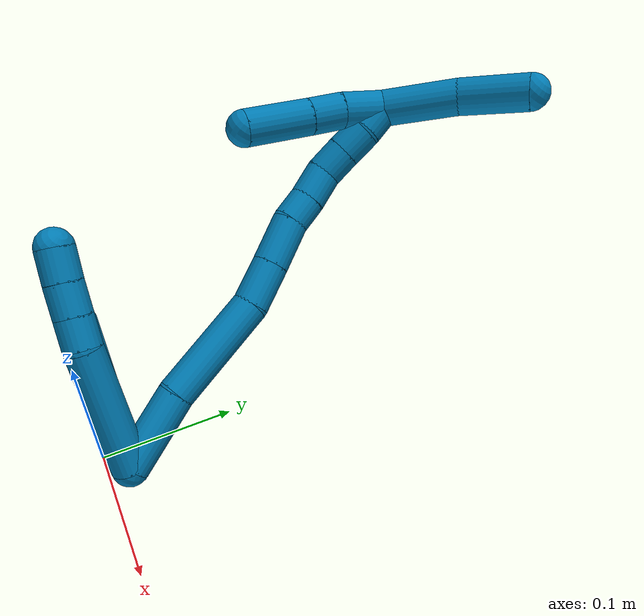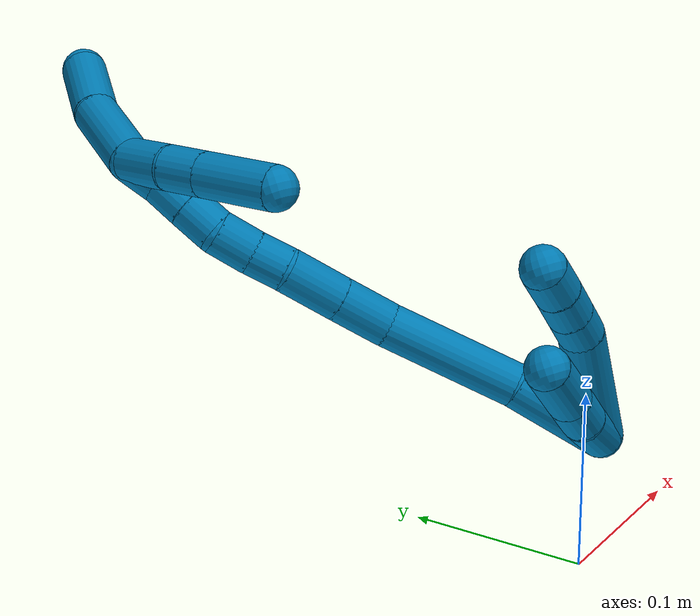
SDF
<sdf version="1.7">
 <world name="default">
  <model name="9">
   <static>0</static>
   <link name="9">
    <collision name="collision-cylinder-e_1_2_8">
     <pose>-0.033994 -0.007023 0.026018 0.263658 -0.900494 -0.12801</pose>
     <geometry><cylinder><radius>0.0125</radius><length>0.086761</length></cylinder></geometry>
     <surface>
      <friction><ode><mu>1.16</mu><mu2>1.16</mu2><slip1>0</slip1><slip2>0</slip2></ode></friction>
      <contact><ode><kp>1e+06</kp><kd>1</kd><max_vel>0</max_vel><min_depth>0.001</min_depth></ode></contact>
     </surface>
    </collision>
    <visual name="visual-cylinder-e_1_2_8">
     <pose>-0.033994 -0.007023 0.026018 0.263658 -0.900494 -0.12801</pose>
     <geometry><cylinder><radius>0.0125</radius><length>0.086761</length></cylinder></geometry>
     <material><ambient>0 0.490196 0.709804 1</ambient></material>
    </visual>
    <collision name="collision-cylinder-e_2_8_9">
     <pose>-0.07681 -0.013766 0.057241 -0.053764 -1.037 0.030681</pose>
     <geometry><cylinder><radius>0.0125</radius><length>0.020494</length></cylinder></geometry>
     <surface>
      <friction><ode><mu>1.16</mu><mu2>1.16</mu2><slip1>0</slip1><slip2>0</slip2></ode></friction>
      <contact><ode><kp>1e+06</kp><kd>1</kd><max_vel>0</max_vel><min_depth>0.001</min_depth></ode></contact>
     </surface>
    </collision>
    <visual name="visual-cylinder-e_2_8_9">
     <pose>-0.07681 -0.013766 0.057241 -0.053764 -1.037 0.030681</pose>
     <geometry><cylinder><radius>0.0125</radius><length>0.020494</length></cylinder></geometry>
     <material><ambient>0 0.490196 0.709804 1</ambient></material>
    </visual>
    <collision name="collision-cylinder-e_3_9_10">
     <pose>-0.094801 -0.013178 0.067872 -0.056709 -1.03587 0.03232</pose>
     <geometry><cylinder><radius>0.0125</radius><length>0.021316</length></cylinder></geometry>
     <surface>
      <friction><ode><mu>1.16</mu><mu2>1.16</mu2><slip1>0</slip1><slip2>0</slip2></ode></friction>
      <contact><ode><kp>1e+06</kp><kd>1</kd><max_vel>0</max_vel><min_depth>0.001</min_depth></ode></contact>
     </surface>
    </collision>
    <visual name="visual-cylinder-e_3_9_10">
     <pose>-0.094801 -0.013178 0.067872 -0.056709 -1.03587 0.03232</pose>
     <geometry><cylinder><radius>0.0125</radius><length>0.021316</length></cylinder></geometry>
     <material><ambient>0 0.490196 0.709804 1</ambient></material>
    </visual>
    <collision name="collision-cylinder-e_4_10_6">
     <pose>-0.11303 -0.012244 0.078982 -0.109693 -1.00766 0.060515</pose>
     <geometry><cylinder><radius>0.0125</radius><length>0.021429</length></cylinder></geometry>
     <surface>
      <friction><ode><mu>1.16</mu><mu2>1.16</mu2><slip1>0</slip1><slip2>0</slip2></ode></friction>
      <contact><ode><kp>1e+06</kp><kd>1</kd><max_vel>0</max_vel><min_depth>0.001</min_depth></ode></contact>
     </surface>
    </collision>
    <visual name="visual-cylinder-e_4_10_6">
     <pose>-0.11303 -0.012244 0.078982 -0.109693 -1.00766 0.060515</pose>
     <geometry><cylinder><radius>0.0125</radius><length>0.021429</length></cylinder></geometry>
     <material><ambient>0 0.490196 0.709804 1</ambient></material>
    </visual>
    <collision name="collision-cylinder-e_1_2_11">
     <pose>-0.017493 0.001388 0.005146 -0.263423 -1.27504 0.195626</pose>
     <geometry><cylinder><radius>0.0125</radius><length>0.036575</length></cylinder></geometry>
     <surface>
      <friction><ode><mu>1.16</mu><mu2>1.16</mu2><slip1>0</slip1><slip2>0</slip2></ode></friction>
      <contact><ode><kp>1e+06</kp><kd>1</kd><max_vel>0</max_vel><min_depth>0.001</min_depth></ode></contact>
     </surface>
    </collision>
    <visual name="visual-cylinder-e_1_2_11">
     <pose>-0.017493 0.001388 0.005146 -0.263423 -1.27504 0.195626</pose>
     <geometry><cylinder><radius>0.0125</radius><length>0.036575</length></cylinder></geometry>
     <material><ambient>0 0.490196 0.709804 1</ambient></material>
    </visual>
    <collision name="collision-cylinder-e_2_11_12">
     <pose>-0.046151 0.003393 0.015788 -0.11181 -1.11089 0.069436</pose>
     <geometry><cylinder><radius>0.0125</radius><length>0.024917</length></cylinder></geometry>
     <surface>
      <friction><ode><mu>1.16</mu><mu2>1.16</mu2><slip1>0</slip1><slip2>0</slip2></ode></friction>
      <contact><ode><kp>1e+06</kp><kd>1</kd><max_vel>0</max_vel><min_depth>0.001</min_depth></ode></contact>
     </surface>
    </collision>
    <visual name="visual-cylinder-e_2_11_12">
     <pose>-0.046151 0.003393 0.015788 -0.11181 -1.11089 0.069436</pose>
     <geometry><cylinder><radius>0.0125</radius><length>0.024917</length></cylinder></geometry>
     <material><ambient>0 0.490196 0.709804 1</ambient></material>
    </visual>
    <collision name="collision-cylinder-e_3_12_5">
     <pose>-0.074562 0.004895 0.029796 -0.103559 -1.11016 0.064254</pose>
     <geometry><cylinder><radius>0.0125</radius><length>0.038508</length></cylinder></geometry>
     <surface>
      <friction><ode><mu>1.16</mu><mu2>1.16</mu2><slip1>0</slip1><slip2>0</slip2></ode></friction>
      <contact><ode><kp>1e+06</kp><kd>1</kd><max_vel>0</max_vel><min_depth>0.001</min_depth></ode></contact>
     </surface>
    </collision>
    <visual name="visual-cylinder-e_3_12_5">
     <pose>-0.074562 0.004895 0.029796 -0.103559 -1.11016 0.064254</pose>
     <geometry><cylinder><radius>0.0125</radius><length>0.038508</length></cylinder></geometry>
     <material><ambient>0 0.490196 0.709804 1</ambient></material>
    </visual>
    <collision name="collision-cylinder-e_1_2_13">
     <pose>-0.009453 0.016778 0.019886 -0.700825 -0.348506 0.128506</pose>
     <geometry><cylinder><radius>0.0125</radius><length>0.055365</length></cylinder></geometry>
     <surface>
      <friction><ode><mu>1.16</mu><mu2>1.16</mu2><slip1>0</slip1><slip2>0</slip2></ode></friction>
      <contact><ode><kp>1e+06</kp><kd>1</kd><max_vel>0</max_vel><min_depth>0.001</min_depth></ode></contact>
     </surface>
    </collision>
    <visual name="visual-cylinder-e_1_2_13">
     <pose>-0.009453 0.016778 0.019886 -0.700825 -0.348506 0.128506</pose>
     <geometry><cylinder><radius>0.0125</radius><length>0.055365</length></cylinder></geometry>
     <material><ambient>0 0.490196 0.709804 1</ambient></material>
    </visual>
    <collision name="collision-cylinder-e_2_13_14">
     <pose>-0.027364 0.060506 0.06587 -0.801467 -0.221721 0.094251</pose>
     <geometry><cylinder><radius>0.0125</radius><length>0.076913</length></cylinder></geometry>
     <surface>
      <friction><ode><mu>1.16</mu><mu2>1.16</mu2><slip1>0</slip1><slip2>0</slip2></ode></friction>
      <contact><ode><kp>1e+06</kp><kd>1</kd><max_vel>0</max_vel><min_depth>0.001</min_depth></ode></contact>
     </surface>
    </collision>
    <visual name="visual-cylinder-e_2_13_14">
     <pose>-0.027364 0.060506 0.06587 -0.801467 -0.221721 0.094251</pose>
     <geometry><cylinder><radius>0.0125</radius><length>0.076913</length></cylinder></geometry>
     <material><ambient>0 0.490196 0.709804 1</ambient></material>
    </visual>
    <collision name="collision-cylinder-e_3_14_15">
     <pose>-0.042633 0.096839 0.102434 -0.73089 -0.45128 0.175216</pose>
     <geometry><cylinder><radius>0.0125</radius><length>0.031241</length></cylinder></geometry>
     <surface>
      <friction><ode><mu>1.16</mu><mu2>1.16</mu2><slip1>0</slip1><slip2>0</slip2></ode></friction>
      <contact><ode><kp>1e+06</kp><kd>1</kd><max_vel>0</max_vel><min_depth>0.001</min_depth></ode></contact>
     </surface>
    </collision>
    <visual name="visual-cylinder-e_3_14_15">
     <pose>-0.042633 0.096839 0.102434 -0.73089 -0.45128 0.175216</pose>
     <geometry><cylinder><radius>0.0125</radius><length>0.031241</length></cylinder></geometry>
     <material><ambient>0 0.490196 0.709804 1</ambient></material>
    </visual>
    <collision name="collision-cylinder-e_4_15_16">
     <pose>-0.056985 0.116016 0.124099 -0.718543 -0.469055 0.178987</pose>
     <geometry><cylinder><radius>0.0125</radius><length>0.033358</length></cylinder></geometry>
     <surface>
      <friction><ode><mu>1.16</mu><mu2>1.16</mu2><slip1>0</slip1><slip2>0</slip2></ode></friction>
      <contact><ode><kp>1e+06</kp><kd>1</kd><max_vel>0</max_vel><min_depth>0.001</min_depth></ode></contact>
     </surface>
    </collision>
    <visual name="visual-cylinder-e_4_15_16">
     <pose>-0.056985 0.116016 0.124099 -0.718543 -0.469055 0.178987</pose>
     <geometry><cylinder><radius>0.0125</radius><length>0.033358</length></cylinder></geometry>
     <material><ambient>0 0.490196 0.709804 1</ambient></material>
    </visual>
    <collision name="collision-cylinder-e_5_16_17">
     <pose>-0.067151 0.132581 0.142193 -0.776353 -0.26538 0.109054</pose>
     <geometry><cylinder><radius>0.0125</radius><length>0.020028</length></cylinder></geometry>
     <surface>
      <friction><ode><mu>1.16</mu><mu2>1.16</mu2><slip1>0</slip1><slip2>0</slip2></ode></friction>
      <contact><ode><kp>1e+06</kp><kd>1</kd><max_vel>0</max_vel><min_depth>0.001</min_depth></ode></contact>
     </surface>
    </collision>
    <visual name="visual-cylinder-e_5_16_17">
     <pose>-0.067151 0.132581 0.142193 -0.776353 -0.26538 0.109054</pose>
     <geometry><cylinder><radius>0.0125</radius><length>0.020028</length></cylinder></geometry>
     <material><ambient>0 0.490196 0.709804 1</ambient></material>
    </visual>
    <collision name="collision-cylinder-e_6_17_18">
     <pose>-0.07368 0.146242 0.157152 -0.707038 -0.352543 0.131271</pose>
     <geometry><cylinder><radius>0.0125</radius><length>0.022603</length></cylinder></geometry>
     <surface>
      <friction><ode><mu>1.16</mu><mu2>1.16</mu2><slip1>0</slip1><slip2>0</slip2></ode></friction>
      <contact><ode><kp>1e+06</kp><kd>1</kd><max_vel>0</max_vel><min_depth>0.001</min_depth></ode></contact>
     </surface>
    </collision>
    <visual name="visual-cylinder-e_6_17_18">
     <pose>-0.07368 0.146242 0.157152 -0.707038 -0.352543 0.131271</pose>
     <geometry><cylinder><radius>0.0125</radius><length>0.022603</length></cylinder></geometry>
     <material><ambient>0 0.490196 0.709804 1</ambient></material>
    </visual>
    <collision name="collision-cylinder-e_7_18_19">
     <pose>-0.078604 0.158247 0.173954 -0.529652 -0.100635 0.027313</pose>
     <geometry><cylinder><radius>0.0125</radius><length>0.020355</length></cylinder></geometry>
     <surface>
      <friction><ode><mu>1.16</mu><mu2>1.16</mu2><slip1>0</slip1><slip2>0</slip2></ode></friction>
      <contact><ode><kp>1e+06</kp><kd>1</kd><max_vel>0</max_vel><min_depth>0.001</min_depth></ode></contact>
     </surface>
    </collision>
    <visual name="visual-cylinder-e_7_18_19">
     <pose>-0.078604 0.158247 0.173954 -0.529652 -0.100635 0.027313</pose>
     <geometry><cylinder><radius>0.0125</radius><length>0.020355</length></cylinder></geometry>
     <material><ambient>0 0.490196 0.709804 1</ambient></material>
    </visual>
    <collision name="collision-cylinder-e_8_19_20">
     <pose>-0.080322 0.168305 0.191412 -0.515625 -0.069256 0.018268</pose>
     <geometry><cylinder><radius>0.0125</radius><length>0.020092</length></cylinder></geometry>
     <surface>
      <friction><ode><mu>1.16</mu><mu2>1.16</mu2><slip1>0</slip1><slip2>0</slip2></ode></friction>
      <contact><ode><kp>1e+06</kp><kd>1</kd><max_vel>0</max_vel><min_depth>0.001</min_depth></ode></contact>
     </surface>
    </collision>
    <visual name="visual-cylinder-e_8_19_20">
     <pose>-0.080322 0.168305 0.191412 -0.515625 -0.069256 0.018268</pose>
     <geometry><cylinder><radius>0.0125</radius><length>0.020092</length></cylinder></geometry>
     <material><ambient>0 0.490196 0.709804 1</ambient></material>
    </visual>
    <collision name="collision-cylinder-e_9_20_1">
     <pose>-0.083062 0.178938 0.208123 -0.618748 -0.205406 0.065864</pose>
     <geometry><cylinder><radius>0.0125</radius><length>0.020045</length></cylinder></geometry>
     <surface>
      <friction><ode><mu>1.16</mu><mu2>1.16</mu2><slip1>0</slip1><slip2>0</slip2></ode></friction>
      <contact><ode><kp>1e+06</kp><kd>1</kd><max_vel>0</max_vel><min_depth>0.001</min_depth></ode></contact>
     </surface>
    </collision>
    <visual name="visual-cylinder-e_9_20_1">
     <pose>-0.083062 0.178938 0.208123 -0.618748 -0.205406 0.065864</pose>
     <geometry><cylinder><radius>0.0125</radius><length>0.020045</length></cylinder></geometry>
     <material><ambient>0 0.490196 0.709804 1</ambient></material>
    </visual>
    <collision name="collision-cylinder-e_1_1_21">
     <pose>-0.092123 0.173306 0.209262 2.11518 -0.487471 -0.831112</pose>
     <geometry><cylinder><radius>0.0125</radius><length>0.029961</length></cylinder></geometry>
     <surface>
      <friction><ode><mu>1.16</mu><mu2>1.16</mu2><slip1>0</slip1><slip2>0</slip2></ode></friction>
      <contact><ode><kp>1e+06</kp><kd>1</kd><max_vel>0</max_vel><min_depth>0.001</min_depth></ode></contact>
     </surface>
    </collision>
    <visual name="visual-cylinder-e_1_1_21">
     <pose>-0.092123 0.173306 0.209262 2.11518 -0.487471 -0.831112</pose>
     <geometry><cylinder><radius>0.0125</radius><length>0.029961</length></cylinder></geometry>
     <material><ambient>0 0.490196 0.709804 1</ambient></material>
    </visual>
    <collision name="collision-cylinder-e_2_21_22">
     <pose>-0.103092 0.152268 0.196575 2.1114 -0.335585 -0.581503</pose>
     <geometry><cylinder><radius>0.0125</radius><length>0.024002</length></cylinder></geometry>
     <surface>
      <friction><ode><mu>1.16</mu><mu2>1.16</mu2><slip1>0</slip1><slip2>0</slip2></ode></friction>
      <contact><ode><kp>1e+06</kp><kd>1</kd><max_vel>0</max_vel><min_depth>0.001</min_depth></ode></contact>
     </surface>
    </collision>
    <visual name="visual-cylinder-e_2_21_22">
     <pose>-0.103092 0.152268 0.196575 2.1114 -0.335585 -0.581503</pose>
     <geometry><cylinder><radius>0.0125</radius><length>0.024002</length></cylinder></geometry>
     <material><ambient>0 0.490196 0.709804 1</ambient></material>
    </visual>
    <collision name="collision-cylinder-e_3_22_4">
     <pose>-0.115027 0.124058 0.179605 2.11285 -0.354168 -0.613373</pose>
     <geometry><cylinder><radius>0.0125</radius><length>0.046037</length></cylinder></geometry>
     <surface>
      <friction><ode><mu>1.16</mu><mu2>1.16</mu2><slip1>0</slip1><slip2>0</slip2></ode></friction>
      <contact><ode><kp>1e+06</kp><kd>1</kd><max_vel>0</max_vel><min_depth>0.001</min_depth></ode></contact>
     </surface>
    </collision>
    <visual name="visual-cylinder-e_3_22_4">
     <pose>-0.115027 0.124058 0.179605 2.11285 -0.354168 -0.613373</pose>
     <geometry><cylinder><radius>0.0125</radius><length>0.046037</length></cylinder></geometry>
     <material><ambient>0 0.490196 0.709804 1</ambient></material>
    </visual>
    <collision name="collision-cylinder-e_1_1_23">
     <pose>-0.069737 0.194253 0.235178 -0.467568 0.623848 -0.153275</pose>
     <geometry><cylinder><radius>0.0125</radius><length>0.052618</length></cylinder></geometry>
     <surface>
      <friction><ode><mu>1.16</mu><mu2>1.16</mu2><slip1>0</slip1><slip2>0</slip2></ode></friction>
      <contact><ode><kp>1e+06</kp><kd>1</kd><max_vel>0</max_vel><min_depth>0.001</min_depth></ode></contact>
     </surface>
    </collision>
    <visual name="visual-cylinder-e_1_1_23">
     <pose>-0.069737 0.194253 0.235178 -0.467568 0.623848 -0.153275</pose>
     <geometry><cylinder><radius>0.0125</radius><length>0.052618</length></cylinder></geometry>
     <material><ambient>0 0.490196 0.709804 1</ambient></material>
    </visual>
    <collision name="collision-cylinder-e_2_23_3">
     <pose>-0.038203 0.208066 0.271044 -0.244242 0.75095 -0.09668</pose>
     <geometry><cylinder><radius>0.0125</radius><length>0.047382</length></cylinder></geometry>
     <surface>
      <friction><ode><mu>1.16</mu><mu2>1.16</mu2><slip1>0</slip1><slip2>0</slip2></ode></friction>
      <contact><ode><kp>1e+06</kp><kd>1</kd><max_vel>0</max_vel><min_depth>0.001</min_depth></ode></contact>
     </surface>
    </collision>
    <visual name="visual-cylinder-e_2_23_3">
     <pose>-0.038203 0.208066 0.271044 -0.244242 0.75095 -0.09668</pose>
     <geometry><cylinder><radius>0.0125</radius><length>0.047382</length></cylinder></geometry>
     <material><ambient>0 0.490196 0.709804 1</ambient></material>
    </visual>
    <collision name="collision-sphere-3">
     <pose>-0.022038 0.212254 0.287849 0 -0 0</pose>
     <geometry><sphere><radius>0.0125</radius></sphere></geometry>
     <surface>
      <friction><ode><mu>1.16</mu><mu2>1.16</mu2><slip1>0</slip1><slip2>0</slip2></ode></friction>
      <contact><ode><kp>1e+06</kp><kd>1</kd><max_vel>0</max_vel><min_depth>0.001</min_depth></ode></contact>
     </surface>
    </collision>
    <visual name="visual-sphere-3">
     <pose>-0.022038 0.212254 0.287849 0 -0 0</pose>
     <geometry><sphere><radius>0.0125</radius></sphere></geometry>
     <material><ambient>0 0.490196 0.709804 1</ambient></material>
    </visual>
    <collision name="collision-sphere-23">
     <pose>-0.054368 0.203877 0.254239 0 -0 0</pose>
     <geometry><sphere><radius>0.0125</radius></sphere></geometry>
     <surface>
      <friction><ode><mu>1.16</mu><mu2>1.16</mu2><slip1>0</slip1><slip2>0</slip2></ode></friction>
      <contact><ode><kp>1e+06</kp><kd>1</kd><max_vel>0</max_vel><min_depth>0.001</min_depth></ode></contact>
     </surface>
    </collision>
    <visual name="visual-sphere-23">
     <pose>-0.054368 0.203877 0.254239 0 -0 0</pose>
     <geometry><sphere><radius>0.0125</radius></sphere></geometry>
     <material><ambient>0 0.490196 0.709804 1</ambient></material>
    </visual>
    <collision name="collision-sphere-4">
     <pose>-0.12301 0.105563 0.168467 0 -0 0</pose>
     <geometry><sphere><radius>0.0125</radius></sphere></geometry>
     <surface>
      <friction><ode><mu>1.16</mu><mu2>1.16</mu2><slip1>0</slip1><slip2>0</slip2></ode></friction>
      <contact><ode><kp>1e+06</kp><kd>1</kd><max_vel>0</max_vel><min_depth>0.001</min_depth></ode></contact>
     </surface>
    </collision>
    <visual name="visual-sphere-4">
     <pose>-0.12301 0.105563 0.168467 0 -0 0</pose>
     <geometry><sphere><radius>0.0125</radius></sphere></geometry>
     <material><ambient>0 0.490196 0.709804 1</ambient></material>
    </visual>
    <collision name="collision-sphere-22">
     <pose>-0.107044 0.142553 0.190743 0 -0 0</pose>
     <geometry><sphere><radius>0.0125</radius></sphere></geometry>
     <surface>
      <friction><ode><mu>1.16</mu><mu2>1.16</mu2><slip1>0</slip1><slip2>0</slip2></ode></friction>
      <contact><ode><kp>1e+06</kp><kd>1</kd><max_vel>0</max_vel><min_depth>0.001</min_depth></ode></contact>
     </surface>
    </collision>
    <visual name="visual-sphere-22">
     <pose>-0.107044 0.142553 0.190743 0 -0 0</pose>
     <geometry><sphere><radius>0.0125</radius></sphere></geometry>
     <material><ambient>0 0.490196 0.709804 1</ambient></material>
    </visual>
    <collision name="collision-sphere-21">
     <pose>-0.09914 0.161984 0.202407 0 -0 0</pose>
     <geometry><sphere><radius>0.0125</radius></sphere></geometry>
     <surface>
      <friction><ode><mu>1.16</mu><mu2>1.16</mu2><slip1>0</slip1><slip2>0</slip2></ode></friction>
      <contact><ode><kp>1e+06</kp><kd>1</kd><max_vel>0</max_vel><min_depth>0.001</min_depth></ode></contact>
     </surface>
    </collision>
    <visual name="visual-sphere-21">
     <pose>-0.09914 0.161984 0.202407 0 -0 0</pose>
     <geometry><sphere><radius>0.0125</radius></sphere></geometry>
     <material><ambient>0 0.490196 0.709804 1</ambient></material>
    </visual>
    <collision name="collision-sphere-1">
     <pose>-0.085106 0.184629 0.216116 0 -0 0</pose>
     <geometry><sphere><radius>0.0125</radius></sphere></geometry>
     <surface>
      <friction><ode><mu>1.16</mu><mu2>1.16</mu2><slip1>0</slip1><slip2>0</slip2></ode></friction>
      <contact><ode><kp>1e+06</kp><kd>1</kd><max_vel>0</max_vel><min_depth>0.001</min_depth></ode></contact>
     </surface>
    </collision>
    <visual name="visual-sphere-1">
     <pose>-0.085106 0.184629 0.216116 0 -0 0</pose>
     <geometry><sphere><radius>0.0125</radius></sphere></geometry>
     <material><ambient>0 0.490196 0.709804 1</ambient></material>
    </visual>
    <collision name="collision-sphere-11">
     <pose>-0.034987 0.002776 0.010293 0 -0 0</pose>
     <geometry><sphere><radius>0.0125</radius></sphere></geometry>
     <surface>
      <friction><ode><mu>1.16</mu><mu2>1.16</mu2><slip1>0</slip1><slip2>0</slip2></ode></friction>
      <contact><ode><kp>1e+06</kp><kd>1</kd><max_vel>0</max_vel><min_depth>0.001</min_depth></ode></contact>
     </surface>
    </collision>
    <visual name="visual-sphere-11">
     <pose>-0.034987 0.002776 0.010293 0 -0 0</pose>
     <geometry><sphere><radius>0.0125</radius></sphere></geometry>
     <material><ambient>0 0.490196 0.709804 1</ambient></material>
    </visual>
    <collision name="collision-sphere-6">
     <pose>-0.12209 -0.011618 0.084668 0 -0 0</pose>
     <geometry><sphere><radius>0.0125</radius></sphere></geometry>
     <surface>
      <friction><ode><mu>1.16</mu><mu2>1.16</mu2><slip1>0</slip1><slip2>0</slip2></ode></friction>
      <contact><ode><kp>1e+06</kp><kd>1</kd><max_vel>0</max_vel><min_depth>0.001</min_depth></ode></contact>
     </surface>
    </collision>
    <visual name="visual-sphere-6">
     <pose>-0.12209 -0.011618 0.084668 0 -0 0</pose>
     <geometry><sphere><radius>0.0125</radius></sphere></geometry>
     <material><ambient>0 0.490196 0.709804 1</ambient></material>
    </visual>
    <collision name="collision-sphere-10">
     <pose>-0.10397 -0.01287 0.073296 0 -0 0</pose>
     <geometry><sphere><radius>0.0125</radius></sphere></geometry>
     <surface>
      <friction><ode><mu>1.16</mu><mu2>1.16</mu2><slip1>0</slip1><slip2>0</slip2></ode></friction>
      <contact><ode><kp>1e+06</kp><kd>1</kd><max_vel>0</max_vel><min_depth>0.001</min_depth></ode></contact>
     </surface>
    </collision>
    <visual name="visual-sphere-10">
     <pose>-0.10397 -0.01287 0.073296 0 -0 0</pose>
     <geometry><sphere><radius>0.0125</radius></sphere></geometry>
     <material><ambient>0 0.490196 0.709804 1</ambient></material>
    </visual>
    <collision name="collision-sphere-9">
     <pose>-0.085631 -0.013486 0.062447 0 -0 0</pose>
     <geometry><sphere><radius>0.0125</radius></sphere></geometry>
     <surface>
      <friction><ode><mu>1.16</mu><mu2>1.16</mu2><slip1>0</slip1><slip2>0</slip2></ode></friction>
      <contact><ode><kp>1e+06</kp><kd>1</kd><max_vel>0</max_vel><min_depth>0.001</min_depth></ode></contact>
     </surface>
    </collision>
    <visual name="visual-sphere-9">
     <pose>-0.085631 -0.013486 0.062447 0 -0 0</pose>
     <geometry><sphere><radius>0.0125</radius></sphere></geometry>
     <material><ambient>0 0.490196 0.709804 1</ambient></material>
    </visual>
    <collision name="collision-sphere-2">
     <geometry><sphere><radius>0.0125</radius></sphere></geometry>
     <surface>
      <friction><ode><mu>1.16</mu><mu2>1.16</mu2><slip1>0</slip1><slip2>0</slip2></ode></friction>
      <contact><ode><kp>1e+06</kp><kd>1</kd><max_vel>0</max_vel><min_depth>0.001</min_depth></ode></contact>
     </surface>
    </collision>
    <visual name="visual-sphere-2">
     <geometry><sphere><radius>0.0125</radius></sphere></geometry>
     <material><ambient>0 0.490196 0.709804 1</ambient></material>
    </visual>
    <collision name="collision-sphere-19">
     <pose>-0.079627 0.163363 0.182693 0 -0 0</pose>
     <geometry><sphere><radius>0.0125</radius></sphere></geometry>
     <surface>
      <friction><ode><mu>1.16</mu><mu2>1.16</mu2><slip1>0</slip1><slip2>0</slip2></ode></friction>
      <contact><ode><kp>1e+06</kp><kd>1</kd><max_vel>0</max_vel><min_depth>0.001</min_depth></ode></contact>
     </surface>
    </collision>
    <visual name="visual-sphere-19">
     <pose>-0.079627 0.163363 0.182693 0 -0 0</pose>
     <geometry><sphere><radius>0.0125</radius></sphere></geometry>
     <material><ambient>0 0.490196 0.709804 1</ambient></material>
    </visual>
    <collision name="collision-sphere-8">
     <pose>-0.067989 -0.014046 0.052035 0 -0 0</pose>
     <geometry><sphere><radius>0.0125</radius></sphere></geometry>
     <surface>
      <friction><ode><mu>1.16</mu><mu2>1.16</mu2><slip1>0</slip1><slip2>0</slip2></ode></friction>
      <contact><ode><kp>1e+06</kp><kd>1</kd><max_vel>0</max_vel><min_depth>0.001</min_depth></ode></contact>
     </surface>
    </collision>
    <visual name="visual-sphere-8">
     <pose>-0.067989 -0.014046 0.052035 0 -0 0</pose>
     <geometry><sphere><radius>0.0125</radius></sphere></geometry>
     <material><ambient>0 0.490196 0.709804 1</ambient></material>
    </visual>
    <collision name="collision-sphere-12">
     <pose>-0.057315 0.00401 0.021284 0 -0 0</pose>
     <geometry><sphere><radius>0.0125</radius></sphere></geometry>
     <surface>
      <friction><ode><mu>1.16</mu><mu2>1.16</mu2><slip1>0</slip1><slip2>0</slip2></ode></friction>
      <contact><ode><kp>1e+06</kp><kd>1</kd><max_vel>0</max_vel><min_depth>0.001</min_depth></ode></contact>
     </surface>
    </collision>
    <visual name="visual-sphere-12">
     <pose>-0.057315 0.00401 0.021284 0 -0 0</pose>
     <geometry><sphere><radius>0.0125</radius></sphere></geometry>
     <material><ambient>0 0.490196 0.709804 1</ambient></material>
    </visual>
    <collision name="collision-sphere-5">
     <pose>-0.091809 0.005779 0.038309 0 -0 0</pose>
     <geometry><sphere><radius>0.0125</radius></sphere></geometry>
     <surface>
      <friction><ode><mu>1.16</mu><mu2>1.16</mu2><slip1>0</slip1><slip2>0</slip2></ode></friction>
      <contact><ode><kp>1e+06</kp><kd>1</kd><max_vel>0</max_vel><min_depth>0.001</min_depth></ode></contact>
     </surface>
    </collision>
    <visual name="visual-sphere-5">
     <pose>-0.091809 0.005779 0.038309 0 -0 0</pose>
     <geometry><sphere><radius>0.0125</radius></sphere></geometry>
     <material><ambient>0 0.490196 0.709804 1</ambient></material>
    </visual>
    <collision name="collision-sphere-13">
     <pose>-0.018907 0.033556 0.039772 0 -0 0</pose>
     <geometry><sphere><radius>0.0125</radius></sphere></geometry>
     <surface>
      <friction><ode><mu>1.16</mu><mu2>1.16</mu2><slip1>0</slip1><slip2>0</slip2></ode></friction>
      <contact><ode><kp>1e+06</kp><kd>1</kd><max_vel>0</max_vel><min_depth>0.001</min_depth></ode></contact>
     </surface>
    </collision>
    <visual name="visual-sphere-13">
     <pose>-0.018907 0.033556 0.039772 0 -0 0</pose>
     <geometry><sphere><radius>0.0125</radius></sphere></geometry>
     <material><ambient>0 0.490196 0.709804 1</ambient></material>
    </visual>
    <collision name="collision-sphere-14">
     <pose>-0.035821 0.087456 0.091967 0 -0 0</pose>
     <geometry><sphere><radius>0.0125</radius></sphere></geometry>
     <surface>
      <friction><ode><mu>1.16</mu><mu2>1.16</mu2><slip1>0</slip1><slip2>0</slip2></ode></friction>
      <contact><ode><kp>1e+06</kp><kd>1</kd><max_vel>0</max_vel><min_depth>0.001</min_depth></ode></contact>
     </surface>
    </collision>
    <visual name="visual-sphere-14">
     <pose>-0.035821 0.087456 0.091967 0 -0 0</pose>
     <geometry><sphere><radius>0.0125</radius></sphere></geometry>
     <material><ambient>0 0.490196 0.709804 1</ambient></material>
    </visual>
    <collision name="collision-sphere-15">
     <pose>-0.049446 0.106223 0.1129 0 -0 0</pose>
     <geometry><sphere><radius>0.0125</radius></sphere></geometry>
     <surface>
      <friction><ode><mu>1.16</mu><mu2>1.16</mu2><slip1>0</slip1><slip2>0</slip2></ode></friction>
      <contact><ode><kp>1e+06</kp><kd>1</kd><max_vel>0</max_vel><min_depth>0.001</min_depth></ode></contact>
     </surface>
    </collision>
    <visual name="visual-sphere-15">
     <pose>-0.049446 0.106223 0.1129 0 -0 0</pose>
     <geometry><sphere><radius>0.0125</radius></sphere></geometry>
     <material><ambient>0 0.490196 0.709804 1</ambient></material>
    </visual>
    <collision name="collision-sphere-16">
     <pose>-0.064525 0.12581 0.135298 0 -0 0</pose>
     <geometry><sphere><radius>0.0125</radius></sphere></geometry>
     <surface>
      <friction><ode><mu>1.16</mu><mu2>1.16</mu2><slip1>0</slip1><slip2>0</slip2></ode></friction>
      <contact><ode><kp>1e+06</kp><kd>1</kd><max_vel>0</max_vel><min_depth>0.001</min_depth></ode></contact>
     </surface>
    </collision>
    <visual name="visual-sphere-16">
     <pose>-0.064525 0.12581 0.135298 0 -0 0</pose>
     <geometry><sphere><radius>0.0125</radius></sphere></geometry>
     <material><ambient>0 0.490196 0.709804 1</ambient></material>
    </visual>
    <collision name="collision-sphere-17">
     <pose>-0.069778 0.139352 0.149088 0 -0 0</pose>
     <geometry><sphere><radius>0.0125</radius></sphere></geometry>
     <surface>
      <friction><ode><mu>1.16</mu><mu2>1.16</mu2><slip1>0</slip1><slip2>0</slip2></ode></friction>
      <contact><ode><kp>1e+06</kp><kd>1</kd><max_vel>0</max_vel><min_depth>0.001</min_depth></ode></contact>
     </surface>
    </collision>
    <visual name="visual-sphere-17">
     <pose>-0.069778 0.139352 0.149088 0 -0 0</pose>
     <geometry><sphere><radius>0.0125</radius></sphere></geometry>
     <material><ambient>0 0.490196 0.709804 1</ambient></material>
    </visual>
    <collision name="collision-sphere-18">
     <pose>-0.077582 0.153131 0.165216 0 -0 0</pose>
     <geometry><sphere><radius>0.0125</radius></sphere></geometry>
     <surface>
      <friction><ode><mu>1.16</mu><mu2>1.16</mu2><slip1>0</slip1><slip2>0</slip2></ode></friction>
      <contact><ode><kp>1e+06</kp><kd>1</kd><max_vel>0</max_vel><min_depth>0.001</min_depth></ode></contact>
     </surface>
    </collision>
    <visual name="visual-sphere-18">
     <pose>-0.077582 0.153131 0.165216 0 -0 0</pose>
     <geometry><sphere><radius>0.0125</radius></sphere></geometry>
     <material><ambient>0 0.490196 0.709804 1</ambient></material>
    </visual>
    <collision name="collision-sphere-20">
     <pose>-0.081017 0.173247 0.200131 0 -0 0</pose>
     <geometry><sphere><radius>0.0125</radius></sphere></geometry>
     <surface>
      <friction><ode><mu>1.16</mu><mu2>1.16</mu2><slip1>0</slip1><slip2>0</slip2></ode></friction>
      <contact><ode><kp>1e+06</kp><kd>1</kd><max_vel>0</max_vel><min_depth>0.001</min_depth></ode></contact>
     </surface>
    </collision>
    <visual name="visual-sphere-20">
     <pose>-0.081017 0.173247 0.200131 0 -0 0</pose>
     <geometry><sphere><radius>0.0125</radius></sphere></geometry>
     <material><ambient>0 0.490196 0.709804 1</ambient></material>
    </visual>
    <inertial>
     <pose>-0.057849 0.082874 0.112317 0 -0 0</pose>
     <mass>0.75</mass>
     <inertia>
      <ixx>0.000115</ixx>
      <ixy>0</ixy>
      <ixz>0</ixz>
      <iyy>0.000153</iyy>
      <iyz>0</iyz>
      <izz>6.6e-05</izz>
     </inertia>
    </inertial>
   </link>
   <pose>0.052631 0.015297 0.051047 -0.416779 0.4308 0.324179</pose>
  </model>
 </world>
</sdf>
